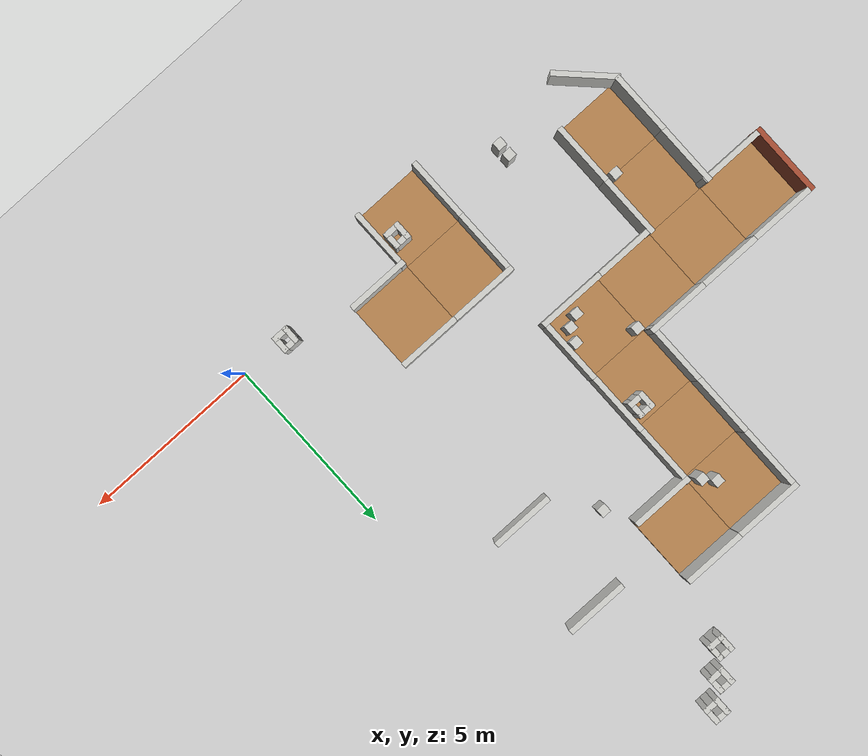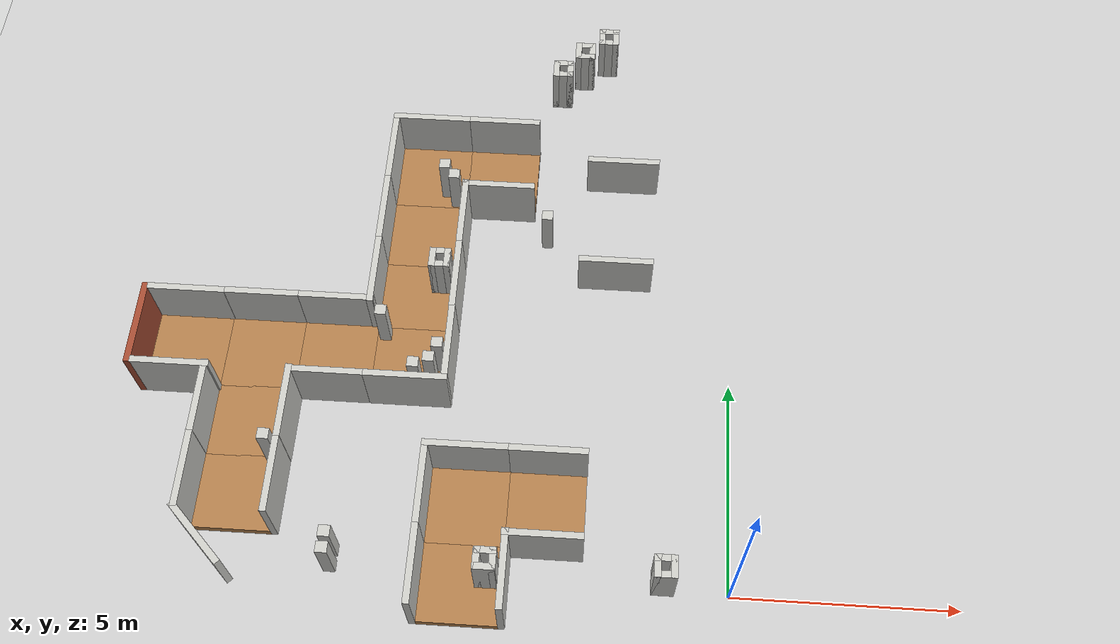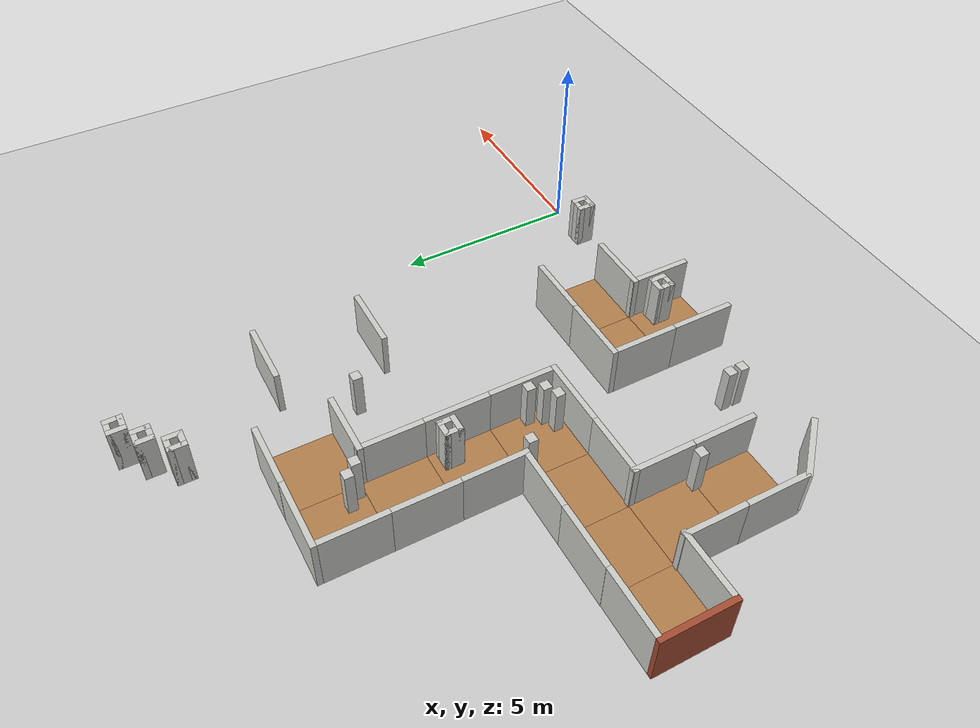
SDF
<sdf version="1.6">
 <world name="default">
  <model name="ground_plane">
   <static>1</static>
   <link name="link">
    <collision name="collision">
     <geometry><plane><normal>0 0 1</normal><size>100 100</size></plane></geometry>
     <surface><friction><ode><mu>100</mu><mu2>50</mu2></ode></friction></surface>
    </collision>
    <visual name="visual">
     <cast_shadows>0</cast_shadows>
     <geometry><plane><normal>0 0 1</normal><size>100 100</size></plane></geometry>
     <material>
      <script><uri>file://media/materials/scripts/gazebo.material</uri><name>Gazebo/Grey</name></script>
     </material>
    </visual>
   </link>
  </model>
  <model name="nerve_straight_9">
   <pose>-4.05488 1.62658 0 0 0 -1.5708</pose>
   <link name="Wall_0">
    <collision name="Wall_0_Collision">
     <geometry><box><size>1.76 1.75 0.2</size></box></geometry>
     <pose>0 0 0.1 0 -0 0</pose>
    </collision>
    <visual name="Wall_0_Visual">
     <pose>0 0 0.1 0 -0 0</pose>
     <geometry><box><size>1.76 1.75 0.2</size></box></geometry>
     <material>
      <script><uri>file://media/materials/scripts/gazebo.material</uri><name>Gazebo/Wood</name></script>
      <ambient>1 0.764706 0.305882 1</ambient>
     </material>
    </visual>
    <pose>0.005 -0.002 0 0 -0 3.14159</pose>
   </link>
   <link name="Wall_2">
    <collision name="Wall_2_Collision">
     <geometry><box><size>1.75 0.15 1.5</size></box></geometry>
     <pose>0 0 0.75 0 -0 0</pose>
    </collision>
    <visual name="Wall_2_Visual">
     <pose>0 0 0.75 0 -0 0</pose>
     <geometry><box><size>1.75 0.15 1.5</size></box></geometry>
     <material>
      <script><uri>file://media/materials/scripts/gazebo.material</uri><name>Gazebo/CeilingTiled</name></script>
      <ambient>1 0.764706 0.305882 1</ambient>
     </material>
    </visual>
    <pose>-0.955 0.002 0 0 0 -1.5708</pose>
   </link>
   <link name="Wall_4">
    <collision name="Wall_4_Collision">
     <geometry><box><size>1.75 0.15 1.5</size></box></geometry>
     <pose>0 0 0.75 0 -0 0</pose>
    </collision>
    <visual name="Wall_4_Visual">
     <pose>0 0 0.75 0 -0 0</pose>
     <geometry><box><size>1.75 0.15 1.5</size></box></geometry>
     <material>
      <script><uri>file://media/materials/scripts/gazebo.material</uri><name>Gazebo/CeilingTiled</name></script>
      <ambient>1 0.764706 0.305882 1</ambient>
     </material>
    </visual>
    <pose>0.955 0.002 0 0 0 -1.5708</pose>
   </link>
   <static>1</static>
  </model>
  <model name="nerve_corner_9">
   <pose>-5.86899 1.703 0 0 -0 0</pose>
   <link name="Wall_0">
    <collision name="Wall_0_Collision">
     <geometry><box><size>1.76 1.75 0.2</size></box></geometry>
     <pose>0 0 0.1 0 -0 0</pose>
    </collision>
    <visual name="Wall_0_Visual">
     <pose>0 0 0.1 0 -0 0</pose>
     <geometry><box><size>1.76 1.75 0.2</size></box></geometry>
     <material>
      <script><uri>file://media/materials/scripts/gazebo.material</uri><name>Gazebo/Wood</name></script>
      <ambient>1 0.764706 0.305882 1</ambient>
     </material>
    </visual>
    <pose>0.077507 -0.077007 0 0 -0 3.14159</pose>
   </link>
   <link name="Wall_2">
    <collision name="Wall_2_Collision">
     <geometry><box><size>1.75 0.15 1.5</size></box></geometry>
     <pose>0 0 0.75 0 -0 0</pose>
    </collision>
    <visual name="Wall_2_Visual">
     <pose>0 0 0.75 0 -0 0</pose>
     <geometry><box><size>1.75 0.15 1.5</size></box></geometry>
     <material>
      <script><uri>file://media/materials/scripts/gazebo.material</uri><name>Gazebo/CeilingTiled</name></script>
      <ambient>1 0.764706 0.305882 1</ambient>
     </material>
    </visual>
    <pose>-0.882493 -0.073007 0 0 0 -1.5708</pose>
   </link>
   <link name="Wall_4">
    <collision name="Wall_4_Collision">
     <geometry><box><size>1.91042 0.15 1.5</size></box></geometry>
     <pose>0 0 0.75 0 -0 0</pose>
    </collision>
    <visual name="Wall_4_Visual">
     <pose>0 0 0.75 0 -0 0</pose>
     <geometry><box><size>1.91042 0.15 1.5</size></box></geometry>
     <material>
      <script><uri>file://media/materials/scripts/gazebo.material</uri><name>Gazebo/CeilingTiled</name></script>
      <ambient>1 0.764706 0.305882 1</ambient>
     </material>
    </visual>
    <pose>-0.002284 0.876825 0 0 -0 3.1414</pose>
   </link>
   <static>1</static>
  </model>
  <model name="nerve_straight_10">
   <pose>-5.79649 -0.117781 0 0 -0 0</pose>
   <link name="Wall_0">
    <collision name="Wall_0_Collision">
     <geometry><box><size>1.76 1.75 0.2</size></box></geometry>
     <pose>0 0 0.1 0 -0 0</pose>
    </collision>
    <visual name="Wall_0_Visual">
     <pose>0 0 0.1 0 -0 0</pose>
     <geometry><box><size>1.76 1.75 0.2</size></box></geometry>
     <material>
      <script><uri>file://media/materials/scripts/gazebo.material</uri><name>Gazebo/Wood</name></script>
      <ambient>1 0.764706 0.305882 1</ambient>
     </material>
    </visual>
    <pose>0.005 -0.002 0 0 -0 3.14159</pose>
   </link>
   <link name="Wall_2">
    <collision name="Wall_2_Collision">
     <geometry><box><size>1.75 0.15 1.5</size></box></geometry>
     <pose>0 0 0.75 0 -0 0</pose>
    </collision>
    <visual name="Wall_2_Visual">
     <pose>0 0 0.75 0 -0 0</pose>
     <geometry><box><size>1.75 0.15 1.5</size></box></geometry>
     <material>
      <script><uri>file://media/materials/scripts/gazebo.material</uri><name>Gazebo/CeilingTiled</name></script>
      <ambient>1 0.764706 0.305882 1</ambient>
     </material>
    </visual>
    <pose>-0.955 0.002 0 0 0 -1.5708</pose>
   </link>
   <link name="Wall_4">
    <collision name="Wall_4_Collision">
     <geometry><box><size>1.75 0.15 1.5</size></box></geometry>
     <pose>0 0 0.75 0 -0 0</pose>
    </collision>
    <visual name="Wall_4_Visual">
     <pose>0 0 0.75 0 -0 0</pose>
     <geometry><box><size>1.75 0.15 1.5</size></box></geometry>
     <material>
      <script><uri>file://media/materials/scripts/gazebo.material</uri><name>Gazebo/CeilingTiled</name></script>
      <ambient>1 0.764706 0.305882 1</ambient>
     </material>
    </visual>
    <pose>0.955 0.002 0 0 0 -1.5708</pose>
   </link>
   <static>1</static>
  </model>
  <model name="nerve_straight_10_clone_0_clone">
   <pose>-10.9639 1.66579 0 0 -0 0</pose>
   <link name="Wall_0">
    <collision name="Wall_0_Collision">
     <geometry><box><size>1.76 1.75 0.2</size></box></geometry>
     <pose>0 0 0.1 0 -0 0</pose>
    </collision>
    <visual name="Wall_0_Visual">
     <pose>0 0 0.1 0 -0 0</pose>
     <geometry><box><size>1.76 1.75 0.2</size></box></geometry>
     <material>
      <script><uri>file://media/materials/scripts/gazebo.material</uri><name>Gazebo/Wood</name></script>
      <ambient>1 0.764706 0.305882 1</ambient>
     </material>
    </visual>
    <pose>0.005 -0.002 0 0 -0 3.14159</pose>
   </link>
   <link name="Wall_2">
    <collision name="Wall_2_Collision">
     <geometry><box><size>1.75 0.15 1.5</size></box></geometry>
     <pose>0 0 0.75 0 -0 0</pose>
    </collision>
    <visual name="Wall_2_Visual">
     <pose>0 0 0.75 0 -0 0</pose>
     <geometry><box><size>1.75 0.15 1.5</size></box></geometry>
     <material>
      <script><uri>file://media/materials/scripts/gazebo.material</uri><name>Gazebo/CeilingTiled</name></script>
      <ambient>1 0.764706 0.305882 1</ambient>
     </material>
    </visual>
    <pose>-0.955 0.002 0 0 0 -1.5708</pose>
   </link>
   <link name="Wall_4">
    <collision name="Wall_4_Collision">
     <geometry><box><size>1.75 0.15 1.5</size></box></geometry>
     <pose>0 0 0.75 0 -0 0</pose>
    </collision>
    <visual name="Wall_4_Visual">
     <pose>0 0 0.75 0 -0 0</pose>
     <geometry><box><size>1.75 0.15 1.5</size></box></geometry>
     <material>
      <script><uri>file://media/materials/scripts/gazebo.material</uri><name>Gazebo/CeilingTiled</name></script>
      <ambient>1 0.764706 0.305882 1</ambient>
     </material>
    </visual>
    <pose>0.955 0.002 0 0 0 -1.5708</pose>
   </link>
   <static>1</static>
  </model>
  <model name="nerve_straight_10_clone_0_clone_0">
   <pose>-10.9587 3.39384 0 0 -0 0</pose>
   <link name="Wall_0">
    <collision name="Wall_0_Collision">
     <geometry><box><size>1.76 1.75 0.2</size></box></geometry>
     <pose>0 0 0.1 0 -0 0</pose>
    </collision>
    <visual name="Wall_0_Visual">
     <pose>0 0 0.1 0 -0 0</pose>
     <geometry><box><size>1.76 1.75 0.2</size></box></geometry>
     <material>
      <script><uri>file://media/materials/scripts/gazebo.material</uri><name>Gazebo/Wood</name></script>
      <ambient>1 0.764706 0.305882 1</ambient>
     </material>
    </visual>
    <pose>0.005 -0.002 0 0 -0 3.14159</pose>
   </link>
   <link name="Wall_2">
    <collision name="Wall_2_Collision">
     <geometry><box><size>1.75 0.15 1.5</size></box></geometry>
     <pose>0 0 0.75 0 -0 0</pose>
    </collision>
    <visual name="Wall_2_Visual">
     <pose>0 0 0.75 0 -0 0</pose>
     <geometry><box><size>1.75 0.15 1.5</size></box></geometry>
     <material>
      <script><uri>file://media/materials/scripts/gazebo.material</uri><name>Gazebo/CeilingTiled</name></script>
      <ambient>1 0.764706 0.305882 1</ambient>
     </material>
    </visual>
    <pose>-0.955 0.002 0 0 0 -1.5708</pose>
   </link>
   <link name="Wall_4">
    <collision name="Wall_4_Collision">
     <geometry><box><size>1.75 0.15 1.5</size></box></geometry>
     <pose>0 0 0.75 0 -0 0</pose>
    </collision>
    <visual name="Wall_4_Visual">
     <pose>0 0 0.75 0 -0 0</pose>
     <geometry><box><size>1.75 0.15 1.5</size></box></geometry>
     <material>
      <script><uri>file://media/materials/scripts/gazebo.material</uri><name>Gazebo/CeilingTiled</name></script>
      <ambient>1 0.764706 0.305882 1</ambient>
     </material>
    </visual>
    <pose>0.955 0.002 0 0 0 -1.5708</pose>
   </link>
   <static>1</static>
  </model>
  <model name="nerve_straight_9_clone">
   <pose>-9.20822 5.12464 0 0 0 -1.5708</pose>
   <link name="Wall_0">
    <collision name="Wall_0_Collision">
     <geometry><box><size>1.76 1.75 0.2</size></box></geometry>
     <pose>0 0 0.1 0 -0 0</pose>
    </collision>
    <visual name="Wall_0_Visual">
     <pose>0 0 0.1 0 -0 0</pose>
     <geometry><box><size>1.76 1.75 0.2</size></box></geometry>
     <material>
      <script><uri>file://media/materials/scripts/gazebo.material</uri><name>Gazebo/Wood</name></script>
      <ambient>1 0.764706 0.305882 1</ambient>
     </material>
    </visual>
    <pose>0.005 -0.002 0 0 -0 3.14159</pose>
   </link>
   <link name="Wall_2">
    <collision name="Wall_2_Collision">
     <geometry><box><size>1.75 0.15 1.5</size></box></geometry>
     <pose>0 0 0.75 0 -0 0</pose>
    </collision>
    <visual name="Wall_2_Visual">
     <pose>0 0 0.75 0 -0 0</pose>
     <geometry><box><size>1.75 0.15 1.5</size></box></geometry>
     <material>
      <script><uri>file://media/materials/scripts/gazebo.material</uri><name>Gazebo/CeilingTiled</name></script>
      <ambient>1 0.764706 0.305882 1</ambient>
     </material>
    </visual>
    <pose>-0.955 0.002 0 0 0 -1.5708</pose>
   </link>
   <link name="Wall_4">
    <collision name="Wall_4_Collision">
     <geometry><box><size>1.75 0.15 1.5</size></box></geometry>
     <pose>0 0 0.75 0 -0 0</pose>
    </collision>
    <visual name="Wall_4_Visual">
     <pose>0 0 0.75 0 -0 0</pose>
     <geometry><box><size>1.75 0.15 1.5</size></box></geometry>
     <material>
      <script><uri>file://media/materials/scripts/gazebo.material</uri><name>Gazebo/CeilingTiled</name></script>
      <ambient>1 0.764706 0.305882 1</ambient>
     </material>
    </visual>
    <pose>0.955 0.002 0 0 0 -1.5708</pose>
   </link>
   <static>1</static>
  </model>
  <model name="nerve_corner_8_clone_clone">
   <pose>-7.38531 5.04632 0 0 0 -3.14159</pose>
   <link name="Wall_0">
    <collision name="Wall_0_Collision">
     <geometry><box><size>1.76 1.75 0.2</size></box></geometry>
     <pose>0 0 0.1 0 -0 0</pose>
    </collision>
    <visual name="Wall_0_Visual">
     <pose>0 0 0.1 0 -0 0</pose>
     <geometry><box><size>1.76 1.75 0.2</size></box></geometry>
     <material>
      <script><uri>file://media/materials/scripts/gazebo.material</uri><name>Gazebo/Wood</name></script>
      <ambient>1 0.764706 0.305882 1</ambient>
     </material>
    </visual>
    <pose>0.077507 -0.077007 0 0 -0 3.14159</pose>
   </link>
   <link name="Wall_2">
    <collision name="Wall_2_Collision">
     <geometry><box><size>1.75 0.15 1.5</size></box></geometry>
     <pose>0 0 0.75 0 -0 0</pose>
    </collision>
    <visual name="Wall_2_Visual">
     <pose>0 0 0.75 0 -0 0</pose>
     <geometry><box><size>1.75 0.15 1.5</size></box></geometry>
     <material>
      <script><uri>file://media/materials/scripts/gazebo.material</uri><name>Gazebo/CeilingTiled</name></script>
      <ambient>1 0.764706 0.305882 1</ambient>
     </material>
    </visual>
    <pose>-0.882493 -0.073007 0 0 0 -1.5708</pose>
   </link>
   <link name="Wall_4">
    <collision name="Wall_4_Collision">
     <geometry><box><size>1.91042 0.15 1.5</size></box></geometry>
     <pose>0 0 0.75 0 -0 0</pose>
    </collision>
    <visual name="Wall_4_Visual">
     <pose>0 0 0.75 0 -0 0</pose>
     <geometry><box><size>1.91042 0.15 1.5</size></box></geometry>
     <material>
      <script><uri>file://media/materials/scripts/gazebo.material</uri><name>Gazebo/CeilingTiled</name></script>
      <ambient>1 0.764706 0.305882 1</ambient>
     </material>
    </visual>
    <pose>-0.002284 0.876825 0 0 -0 3.1414</pose>
   </link>
   <static>1</static>
  </model>
  <model name="nerve_straight_10_clone_clone">
   <pose>-7.46548 6.86517 0 0 -0 0</pose>
   <link name="Wall_0">
    <collision name="Wall_0_Collision">
     <geometry><box><size>1.76 1.75 0.2</size></box></geometry>
     <pose>0 0 0.1 0 -0 0</pose>
    </collision>
    <visual name="Wall_0_Visual">
     <pose>0 0 0.1 0 -0 0</pose>
     <geometry><box><size>1.76 1.75 0.2</size></box></geometry>
     <material>
      <script><uri>file://media/materials/scripts/gazebo.material</uri><name>Gazebo/Wood</name></script>
      <ambient>1 0.764706 0.305882 1</ambient>
     </material>
    </visual>
    <pose>0.005 -0.002 0 0 -0 3.14159</pose>
   </link>
   <link name="Wall_2">
    <collision name="Wall_2_Collision">
     <geometry><box><size>1.75 0.15 1.5</size></box></geometry>
     <pose>0 0 0.75 0 -0 0</pose>
    </collision>
    <visual name="Wall_2_Visual">
     <pose>0 0 0.75 0 -0 0</pose>
     <geometry><box><size>1.75 0.15 1.5</size></box></geometry>
     <material>
      <script><uri>file://media/materials/scripts/gazebo.material</uri><name>Gazebo/CeilingTiled</name></script>
      <ambient>1 0.764706 0.305882 1</ambient>
     </material>
    </visual>
    <pose>-0.955 0.002 0 0 0 -1.5708</pose>
   </link>
   <link name="Wall_4">
    <collision name="Wall_4_Collision">
     <geometry><box><size>1.75 0.15 1.5</size></box></geometry>
     <pose>0 0 0.75 0 -0 0</pose>
    </collision>
    <visual name="Wall_4_Visual">
     <pose>0 0 0.75 0 -0 0</pose>
     <geometry><box><size>1.75 0.15 1.5</size></box></geometry>
     <material>
      <script><uri>file://media/materials/scripts/gazebo.material</uri><name>Gazebo/CeilingTiled</name></script>
      <ambient>1 0.764706 0.305882 1</ambient>
     </material>
    </visual>
    <pose>0.955 0.002 0 0 0 -1.5708</pose>
   </link>
   <static>1</static>
  </model>
  <model name="nerve_corner_9_clone_0">
   <pose>-7.54165 10.4237 0 0 -0 0</pose>
   <link name="Wall_0">
    <collision name="Wall_0_Collision">
     <geometry><box><size>1.76 1.75 0.2</size></box></geometry>
     <pose>0 0 0.1 0 -0 0</pose>
    </collision>
    <visual name="Wall_0_Visual">
     <pose>0 0 0.1 0 -0 0</pose>
     <geometry><box><size>1.76 1.75 0.2</size></box></geometry>
     <material>
      <script><uri>file://media/materials/scripts/gazebo.material</uri><name>Gazebo/Wood</name></script>
      <ambient>1 0.764706 0.305882 1</ambient>
     </material>
    </visual>
    <pose>0.077507 -0.077007 0 0 -0 3.14159</pose>
   </link>
   <link name="Wall_2">
    <collision name="Wall_2_Collision">
     <geometry><box><size>1.75 0.15 1.5</size></box></geometry>
     <pose>0 0 0.75 0 -0 0</pose>
    </collision>
    <visual name="Wall_2_Visual">
     <pose>0 0 0.75 0 -0 0</pose>
     <geometry><box><size>1.75 0.15 1.5</size></box></geometry>
     <material>
      <script><uri>file://media/materials/scripts/gazebo.material</uri><name>Gazebo/CeilingTiled</name></script>
      <ambient>1 0.764706 0.305882 1</ambient>
     </material>
    </visual>
    <pose>-0.882493 -0.073007 0 0 0 -1.5708</pose>
   </link>
   <link name="Wall_4">
    <collision name="Wall_4_Collision">
     <geometry><box><size>1.91042 0.15 1.5</size></box></geometry>
     <pose>0 0 0.75 0 -0 0</pose>
    </collision>
    <visual name="Wall_4_Visual">
     <pose>0 0 0.75 0 -0 0</pose>
     <geometry><box><size>1.91042 0.15 1.5</size></box></geometry>
     <material>
      <script><uri>file://media/materials/scripts/gazebo.material</uri><name>Gazebo/CeilingTiled</name></script>
      <ambient>1 0.764706 0.305882 1</ambient>
     </material>
    </visual>
    <pose>-0.002284 0.876825 0 0 -0 3.1414</pose>
   </link>
   <static>1</static>
  </model>
  <model name="nerve_straight_9_clone_0">
   <pose>-5.71933 10.3491 0 0 0 -1.5708</pose>
   <link name="Wall_0">
    <collision name="Wall_0_Collision">
     <geometry><box><size>1.76 1.75 0.2</size></box></geometry>
     <pose>0 0 0.1 0 -0 0</pose>
    </collision>
    <visual name="Wall_0_Visual">
     <pose>0 0 0.1 0 -0 0</pose>
     <geometry><box><size>1.76 1.75 0.2</size></box></geometry>
     <material>
      <script><uri>file://media/materials/scripts/gazebo.material</uri><name>Gazebo/Wood</name></script>
      <ambient>1 0.764706 0.305882 1</ambient>
     </material>
    </visual>
    <pose>0.005 -0.002 0 0 -0 3.14159</pose>
   </link>
   <link name="Wall_2">
    <collision name="Wall_2_Collision">
     <geometry><box><size>1.75 0.15 1.5</size></box></geometry>
     <pose>0 0 0.75 0 -0 0</pose>
    </collision>
    <visual name="Wall_2_Visual">
     <pose>0 0 0.75 0 -0 0</pose>
     <geometry><box><size>1.75 0.15 1.5</size></box></geometry>
     <material>
      <script><uri>file://media/materials/scripts/gazebo.material</uri><name>Gazebo/CeilingTiled</name></script>
      <ambient>1 0.764706 0.305882 1</ambient>
     </material>
    </visual>
    <pose>-0.955 0.002 0 0 0 -1.5708</pose>
   </link>
   <link name="Wall_4">
    <collision name="Wall_4_Collision">
     <geometry><box><size>1.75 0.15 1.5</size></box></geometry>
     <pose>0 0 0.75 0 -0 0</pose>
    </collision>
    <visual name="Wall_4_Visual">
     <pose>0 0 0.75 0 -0 0</pose>
     <geometry><box><size>1.75 0.15 1.5</size></box></geometry>
     <material>
      <script><uri>file://media/materials/scripts/gazebo.material</uri><name>Gazebo/CeilingTiled</name></script>
      <ambient>1 0.764706 0.305882 1</ambient>
     </material>
    </visual>
    <pose>0.955 0.002 0 0 0 -1.5708</pose>
   </link>
   <static>1</static>
  </model>
  <model name="nerve_straight_10_clone_clone_clone">
   <pose>-7.47032 8.60859 0 0 -0 0</pose>
   <link name="Wall_0">
    <collision name="Wall_0_Collision">
     <geometry><box><size>1.76 1.75 0.2</size></box></geometry>
     <pose>0 0 0.1 0 -0 0</pose>
    </collision>
    <visual name="Wall_0_Visual">
     <pose>0 0 0.1 0 -0 0</pose>
     <geometry><box><size>1.76 1.75 0.2</size></box></geometry>
     <material>
      <script><uri>file://media/materials/scripts/gazebo.material</uri><name>Gazebo/Wood</name></script>
      <ambient>1 0.764706 0.305882 1</ambient>
     </material>
    </visual>
    <pose>0.005 -0.002 0 0 -0 3.14159</pose>
   </link>
   <link name="Wall_2">
    <collision name="Wall_2_Collision">
     <geometry><box><size>1.75 0.15 1.5</size></box></geometry>
     <pose>0 0 0.75 0 -0 0</pose>
    </collision>
    <visual name="Wall_2_Visual">
     <pose>0 0 0.75 0 -0 0</pose>
     <geometry><box><size>1.75 0.15 1.5</size></box></geometry>
     <material>
      <script><uri>file://media/materials/scripts/gazebo.material</uri><name>Gazebo/CeilingTiled</name></script>
      <ambient>1 0.764706 0.305882 1</ambient>
     </material>
    </visual>
    <pose>-0.955 0.002 0 0 0 -1.5708</pose>
   </link>
   <link name="Wall_4">
    <collision name="Wall_4_Collision">
     <geometry><box><size>1.75 0.15 1.5</size></box></geometry>
     <pose>0 0 0.75 0 -0 0</pose>
    </collision>
    <visual name="Wall_4_Visual">
     <pose>0 0 0.75 0 -0 0</pose>
     <geometry><box><size>1.75 0.15 1.5</size></box></geometry>
     <material>
      <script><uri>file://media/materials/scripts/gazebo.material</uri><name>Gazebo/CeilingTiled</name></script>
      <ambient>1 0.764706 0.305882 1</ambient>
     </material>
    </visual>
    <pose>0.955 0.002 0 0 0 -1.5708</pose>
   </link>
   <static>1</static>
  </model>
  <model name="nerve_end_1">
   <pose>-12.7692 5.12243 0 0 -0 1.5708</pose>
   <link name="Wall_0">
    <collision name="Wall_0_Collision">
     <geometry><box><size>1.76 1.75 0.2</size></box></geometry>
     <pose>0 0 0.1 0 -0 0</pose>
    </collision>
    <visual name="Wall_0_Visual">
     <pose>0 0 0.1 0 -0 0</pose>
     <geometry><box><size>1.76 1.75 0.2</size></box></geometry>
     <material>
      <script><uri>file://media/materials/scripts/gazebo.material</uri><name>Gazebo/Wood</name></script>
      <ambient>1 0.764706 0.305882 1</ambient>
     </material>
    </visual>
    <pose>-0.009 -0.064 0 0 -0 0</pose>
   </link>
   <link name="Wall_2">
    <collision name="Wall_2_Collision">
     <geometry><box><size>1.8 0.15 1.5</size></box></geometry>
     <pose>0 0 0.75 0 -0 0</pose>
    </collision>
    <visual name="Wall_2_Visual">
     <pose>0 0 0.75 0 -0 0</pose>
     <geometry><box><size>1.8 0.15 1.5</size></box></geometry>
     <material>
      <script><uri>file://media/materials/scripts/gazebo.material</uri><name>Gazebo/CeilingTiled</name></script>
      <ambient>1 0.764706 0.305882 1</ambient>
     </material>
    </visual>
    <pose>-0.95 -0.065 0 0 0 -1.5708</pose>
   </link>
   <link name="Wall_4">
    <collision name="Wall_4_Collision">
     <geometry><box><size>1.8 0.15 1.5</size></box></geometry>
     <pose>0 0 0.75 0 -0 0</pose>
    </collision>
    <visual name="Wall_4_Visual">
     <pose>0 0 0.75 0 -0 0</pose>
     <geometry><box><size>1.8 0.15 1.5</size></box></geometry>
     <material>
      <script><uri>file://media/materials/scripts/gazebo.material</uri><name>Gazebo/CeilingTiled</name></script>
      <ambient>1 0.764706 0.305882 1</ambient>
     </material>
    </visual>
    <pose>0.95 -0.065 0 0 0 -1.5708</pose>
   </link>
   <link name="Wall_6">
    <collision name="Wall_6_Collision">
     <geometry><box><size>2.05 0.15 1.5</size></box></geometry>
     <pose>0 0 0.75 0 -0 0</pose>
    </collision>
    <visual name="Wall_6_Visual">
     <pose>0 0 0.75 0 -0 0</pose>
     <geometry><box><size>2.05 0.15 1.5</size></box></geometry>
     <material>
      <script><uri>file://media/materials/scripts/gazebo.material</uri><name>Gazebo/Bricks</name></script>
      <ambient>0.996078 0.47451 0.0196078 1</ambient>
     </material>
    </visual>
    <pose>0 0.89 0 0 -0 0</pose>
   </link>
   <static>1</static>
  </model>
  <model name="nerve_onewall_1_clone">
   <pose>-10.9579 5.1956 0 0 0 -1.57079</pose>
   <link name="Wall_0">
    <collision name="Wall_0_Collision">
     <geometry><box><size>1.76 1.75 0.2</size></box></geometry>
     <pose>0 0 0.1 0 -0 0</pose>
    </collision>
    <visual name="Wall_0_Visual">
     <pose>0 0 0.1 0 -0 0</pose>
     <geometry><box><size>1.76 1.75 0.2</size></box></geometry>
     <material>
      <script><uri>file://media/materials/scripts/gazebo.material</uri><name>Gazebo/Wood</name></script>
      <ambient>1 0.764706 0.305882 1</ambient>
     </material>
    </visual>
    <pose>0.0775 -0.002 0 0 -0 3.14159</pose>
   </link>
   <link name="Wall_2">
    <collision name="Wall_2_Collision">
     <geometry><box><size>1.75 0.15 1.5</size></box></geometry>
     <pose>0 0 0.75 0 -0 0</pose>
    </collision>
    <visual name="Wall_2_Visual">
     <pose>0 0 0.75 0 -0 0</pose>
     <geometry><box><size>1.75 0.15 1.5</size></box></geometry>
     <material>
      <script><uri>file://media/materials/scripts/gazebo.material</uri><name>Gazebo/CeilingTiled</name></script>
      <ambient>1 0.764706 0.305882 1</ambient>
     </material>
    </visual>
    <pose>-0.8825 0.002 0 0 0 -1.5708</pose>
   </link>
   <static>1</static>
  </model>
  <model name="nerve_obs_squarepillar_large_clone_0">
   <pose>-1.44891 0.139332 0.2 0 -0 0</pose>
   <link name="Wall_31">
    <collision name="Wall_31_Collision">
     <geometry><box><size>0.5 0.15 1.3</size></box></geometry>
     <pose>0 0 0.65 0 -0 0</pose>
    </collision>
    <visual name="Wall_31_Visual">
     <pose>0 0 0.65 0 -0 0</pose>
     <geometry><box><size>0.5 0.15 1.3</size></box></geometry>
     <material>
      <script><uri>file://media/materials/scripts/gazebo.material</uri><name>Gazebo/CeilingTiled</name></script>
      <ambient>1 0.764706 0.305882 1</ambient>
     </material>
    </visual>
    <pose>-0.175 0 0 0 0 -1.5708</pose>
   </link>
   <link name="Wall_32">
    <collision name="Wall_32_Collision">
     <geometry><box><size>0.5 0.15 1.3</size></box></geometry>
     <pose>0 0 0.65 0 -0 0</pose>
    </collision>
    <visual name="Wall_32_Visual">
     <pose>0 0 0.65 0 -0 0</pose>
     <geometry><box><size>0.5 0.15 1.3</size></box></geometry>
     <material>
      <script><uri>file://media/materials/scripts/gazebo.material</uri><name>Gazebo/CeilingTiled</name></script>
      <ambient>1 0.764706 0.305882 1</ambient>
     </material>
    </visual>
    <pose>0 -0.175 0 0 -0 0</pose>
   </link>
   <link name="Wall_33">
    <collision name="Wall_33_Collision">
     <geometry><box><size>0.5 0.15 1.3</size></box></geometry>
     <pose>0 0 0.65 0 -0 0</pose>
    </collision>
    <visual name="Wall_33_Visual">
     <pose>0 0 0.65 0 -0 0</pose>
     <geometry><box><size>0.5 0.15 1.3</size></box></geometry>
     <material>
      <script><uri>file://media/materials/scripts/gazebo.material</uri><name>Gazebo/CeilingTiled</name></script>
      <ambient>1 0.764706 0.305882 1</ambient>
     </material>
    </visual>
    <pose>0.175 0 0 0 -0 1.5708</pose>
   </link>
   <link name="Wall_34">
    <collision name="Wall_34_Collision">
     <geometry><box><size>0.5 0.15 1.3</size></box></geometry>
     <pose>0 0 0.65 0 -0 0</pose>
    </collision>
    <visual name="Wall_34_Visual">
     <pose>0 0 0.65 0 -0 0</pose>
     <geometry><box><size>0.5 0.15 1.3</size></box></geometry>
     <material>
      <script><uri>file://media/materials/scripts/gazebo.material</uri><name>Gazebo/CeilingTiled</name></script>
      <ambient>1 0.764706 0.305882 1</ambient>
     </material>
    </visual>
    <pose>0 0.175 0 0 -0 3.14159</pose>
   </link>
   <static>1</static>
  </model>
  <model name="nerve_obs_wall_full_clone_0">
   <pose>-11.3651 0.243622 0.2 0 0 -0.785398</pose>
   <link name="Wall_21">
    <collision name="Wall_21_Collision">
     <geometry><box><size>1.75 0.15 1.3</size></box></geometry>
     <pose>0 0 0.65 0 -0 0</pose>
    </collision>
    <visual name="Wall_21_Visual">
     <pose>0 0 0.65 0 -0 0</pose>
     <geometry><box><size>1.75 0.15 1.3</size></box></geometry>
     <material>
      <script><uri>file://media/materials/scripts/gazebo.material</uri><name>Gazebo/CeilingTiled</name></script>
      <ambient>1 0.764706 0.305882 1</ambient>
     </material>
    </visual>
   </link>
   <static>1</static>
  </model>
  <model name="nerve_obs_squarepillar_large_clone_0_clone_5">
   <pose>-5.23143 0.071334 0.2 0 -0 0</pose>
   <link name="Wall_31">
    <collision name="Wall_31_Collision">
     <geometry><box><size>0.5 0.15 1.3</size></box></geometry>
     <pose>0 0 0.65 0 -0 0</pose>
    </collision>
    <visual name="Wall_31_Visual">
     <pose>0 0 0.65 0 -0 0</pose>
     <geometry><box><size>0.5 0.15 1.3</size></box></geometry>
     <material>
      <script><uri>file://media/materials/scripts/gazebo.material</uri><name>Gazebo/CeilingTiled</name></script>
      <ambient>1 0.764706 0.305882 1</ambient>
     </material>
    </visual>
    <pose>-0.175 0 0 0 0 -1.5708</pose>
   </link>
   <link name="Wall_32">
    <collision name="Wall_32_Collision">
     <geometry><box><size>0.5 0.15 1.3</size></box></geometry>
     <pose>0 0 0.65 0 -0 0</pose>
    </collision>
    <visual name="Wall_32_Visual">
     <pose>0 0 0.65 0 -0 0</pose>
     <geometry><box><size>0.5 0.15 1.3</size></box></geometry>
     <material>
      <script><uri>file://media/materials/scripts/gazebo.material</uri><name>Gazebo/CeilingTiled</name></script>
      <ambient>1 0.764706 0.305882 1</ambient>
     </material>
    </visual>
    <pose>0 -0.175 0 0 -0 0</pose>
   </link>
   <link name="Wall_33">
    <collision name="Wall_33_Collision">
     <geometry><box><size>0.5 0.15 1.3</size></box></geometry>
     <pose>0 0 0.65 0 -0 0</pose>
    </collision>
    <visual name="Wall_33_Visual">
     <pose>0 0 0.65 0 -0 0</pose>
     <geometry><box><size>0.5 0.15 1.3</size></box></geometry>
     <material>
      <script><uri>file://media/materials/scripts/gazebo.material</uri><name>Gazebo/CeilingTiled</name></script>
      <ambient>1 0.764706 0.305882 1</ambient>
     </material>
    </visual>
    <pose>0.175 0 0 0 -0 1.5708</pose>
   </link>
   <link name="Wall_34">
    <collision name="Wall_34_Collision">
     <geometry><box><size>0.5 0.15 1.3</size></box></geometry>
     <pose>0 0 0.65 0 -0 0</pose>
    </collision>
    <visual name="Wall_34_Visual">
     <pose>0 0 0.65 0 -0 0</pose>
     <geometry><box><size>0.5 0.15 1.3</size></box></geometry>
     <material>
      <script><uri>file://media/materials/scripts/gazebo.material</uri><name>Gazebo/CeilingTiled</name></script>
      <ambient>1 0.764706 0.305882 1</ambient>
     </material>
    </visual>
    <pose>0 0.175 0 0 -0 3.14159</pose>
   </link>
   <static>1</static>
  </model>
  <model name="nerve_obs_squarepillar_small_clone_0_clone_1_clone_4_clone_1">
   <pose>-8.64193 0.447951 0.2 0 -0 0</pose>
   <link name="Wall_40">
    <collision name="Wall_40_Collision">
     <geometry><box><size>0.26 0.25 1.3</size></box></geometry>
     <pose>0 0 0.65 0 -0 0</pose>
    </collision>
    <visual name="Wall_40_Visual">
     <pose>0 0 0.65 0 -0 0</pose>
     <geometry><box><size>0.26 0.25 1.3</size></box></geometry>
     <material>
      <script><uri>file://media/materials/scripts/gazebo.material</uri><name>Gazebo/CeilingTiled</name></script>
      <ambient>1 0.764706 0.305882 1</ambient>
     </material>
    </visual>
   </link>
   <static>1</static>
  </model>
  <model name="nerve_obs_squarepillar_small_clone_0_clone_1_clone_4_clone_2">
   <pose>-8.64237 0.095538 0.2 0 -0 0</pose>
   <link name="Wall_40">
    <collision name="Wall_40_Collision">
     <geometry><box><size>0.26 0.25 1.3</size></box></geometry>
     <pose>0 0 0.65 0 -0 0</pose>
    </collision>
    <visual name="Wall_40_Visual">
     <pose>0 0 0.65 0 -0 0</pose>
     <geometry><box><size>0.26 0.25 1.3</size></box></geometry>
     <material>
      <script><uri>file://media/materials/scripts/gazebo.material</uri><name>Gazebo/CeilingTiled</name></script>
      <ambient>1 0.764706 0.305882 1</ambient>
     </material>
    </visual>
   </link>
   <static>1</static>
  </model>
  <model name="nerve_obs_squarepillar_small_clone_0_clone_1_clone_4_clone_3">
   <pose>-6.90957 4.66203 0.2 0 -0 0</pose>
   <link name="Wall_40">
    <collision name="Wall_40_Collision">
     <geometry><box><size>0.26 0.25 1.3</size></box></geometry>
     <pose>0 0 0.65 0 -0 0</pose>
    </collision>
    <visual name="Wall_40_Visual">
     <pose>0 0 0.65 0 -0 0</pose>
     <geometry><box><size>0.26 0.25 1.3</size></box></geometry>
     <material>
      <script><uri>file://media/materials/scripts/gazebo.material</uri><name>Gazebo/CeilingTiled</name></script>
      <ambient>1 0.764706 0.305882 1</ambient>
     </material>
    </visual>
   </link>
   <static>1</static>
  </model>
  <model name="nerve_obs_squarepillar_small_clone_0_clone_1_clone_4_clone_4">
   <pose>-8.13114 5.78034 0.2 0 -0 0</pose>
   <link name="Wall_40">
    <collision name="Wall_40_Collision">
     <geometry><box><size>0.26 0.25 1.3</size></box></geometry>
     <pose>0 0 0.65 0 -0 0</pose>
    </collision>
    <visual name="Wall_40_Visual">
     <pose>0 0 0.65 0 -0 0</pose>
     <geometry><box><size>0.26 0.25 1.3</size></box></geometry>
     <material>
      <script><uri>file://media/materials/scripts/gazebo.material</uri><name>Gazebo/CeilingTiled</name></script>
      <ambient>1 0.764706 0.305882 1</ambient>
     </material>
    </visual>
   </link>
   <static>1</static>
  </model>
  <model name="nerve_obs_squarepillar_small_clone_0_clone_1_clone_4_clone_5">
   <pose>-6.75294 5.02848 0.2 0 -0 0</pose>
   <link name="Wall_40">
    <collision name="Wall_40_Collision">
     <geometry><box><size>0.26 0.25 1.3</size></box></geometry>
     <pose>0 0 0.65 0 -0 0</pose>
    </collision>
    <visual name="Wall_40_Visual">
     <pose>0 0 0.65 0 -0 0</pose>
     <geometry><box><size>0.26 0.25 1.3</size></box></geometry>
     <material>
      <script><uri>file://media/materials/scripts/gazebo.material</uri><name>Gazebo/CeilingTiled</name></script>
      <ambient>1 0.764706 0.305882 1</ambient>
     </material>
    </visual>
   </link>
   <static>1</static>
  </model>
  <model name="nerve_obs_squarepillar_small_clone_0_clone_1_clone_4_clone_6">
   <pose>-7.2429 4.50165 0.2 0 -0 0</pose>
   <link name="Wall_40">
    <collision name="Wall_40_Collision">
     <geometry><box><size>0.26 0.25 1.3</size></box></geometry>
     <pose>0 0 0.65 0 -0 0</pose>
    </collision>
    <visual name="Wall_40_Visual">
     <pose>0 0 0.65 0 -0 0</pose>
     <geometry><box><size>0.26 0.25 1.3</size></box></geometry>
     <material>
      <script><uri>file://media/materials/scripts/gazebo.material</uri><name>Gazebo/CeilingTiled</name></script>
      <ambient>1 0.764706 0.305882 1</ambient>
     </material>
    </visual>
   </link>
   <static>1</static>
  </model>
  <model name="nerve_obs_squarepillar_large_clone_3_clone">
   <pose>-6.92497 7.26089 0.2 0 -0 0</pose>
   <link name="Wall_31">
    <collision name="Wall_31_Collision">
     <geometry><box><size>0.5 0.15 1.3</size></box></geometry>
     <pose>0 0 0.65 0 -0 0</pose>
    </collision>
    <visual name="Wall_31_Visual">
     <pose>0 0 0.65 0 -0 0</pose>
     <geometry><box><size>0.5 0.15 1.3</size></box></geometry>
     <material>
      <script><uri>file://media/materials/scripts/gazebo.material</uri><name>Gazebo/CeilingTiled</name></script>
      <ambient>1 0.764706 0.305882 1</ambient>
     </material>
    </visual>
    <pose>-0.175 0 0 0 0 -1.5708</pose>
   </link>
   <link name="Wall_32">
    <collision name="Wall_32_Collision">
     <geometry><box><size>0.5 0.15 1.3</size></box></geometry>
     <pose>0 0 0.65 0 -0 0</pose>
    </collision>
    <visual name="Wall_32_Visual">
     <pose>0 0 0.65 0 -0 0</pose>
     <geometry><box><size>0.5 0.15 1.3</size></box></geometry>
     <material>
      <script><uri>file://media/materials/scripts/gazebo.material</uri><name>Gazebo/CeilingTiled</name></script>
      <ambient>1 0.764706 0.305882 1</ambient>
     </material>
    </visual>
    <pose>0 -0.175 0 0 -0 0</pose>
   </link>
   <link name="Wall_33">
    <collision name="Wall_33_Collision">
     <geometry><box><size>0.5 0.15 1.3</size></box></geometry>
     <pose>0 0 0.65 0 -0 0</pose>
    </collision>
    <visual name="Wall_33_Visual">
     <pose>0 0 0.65 0 -0 0</pose>
     <geometry><box><size>0.5 0.15 1.3</size></box></geometry>
     <material>
      <script><uri>file://media/materials/scripts/gazebo.material</uri><name>Gazebo/CeilingTiled</name></script>
      <ambient>1 0.764706 0.305882 1</ambient>
     </material>
    </visual>
    <pose>0.175 0 0 0 -0 1.5708</pose>
   </link>
   <link name="Wall_34">
    <collision name="Wall_34_Collision">
     <geometry><box><size>0.5 0.15 1.3</size></box></geometry>
     <pose>0 0 0.65 0 -0 0</pose>
    </collision>
    <visual name="Wall_34_Visual">
     <pose>0 0 0.65 0 -0 0</pose>
     <geometry><box><size>0.5 0.15 1.3</size></box></geometry>
     <material>
      <script><uri>file://media/materials/scripts/gazebo.material</uri><name>Gazebo/CeilingTiled</name></script>
      <ambient>1 0.764706 0.305882 1</ambient>
     </material>
    </visual>
    <pose>0 0.175 0 0 -0 3.14159</pose>
   </link>
   <static>1</static>
  </model>
  <model name="nerve_obs_wall_full_clone_1">
   <pose>-2.71165 10.2795 0.2 0 -0 0</pose>
   <link name="Wall_21">
    <collision name="Wall_21_Collision">
     <geometry><box><size>1.75 0.15 1.3</size></box></geometry>
     <pose>0 0 0.65 0 -0 0</pose>
    </collision>
    <visual name="Wall_21_Visual">
     <pose>0 0 0.65 0 -0 0</pose>
     <geometry><box><size>1.75 0.15 1.3</size></box></geometry>
     <material>
      <script><uri>file://media/materials/scripts/gazebo.material</uri><name>Gazebo/CeilingTiled</name></script>
      <ambient>1 0.764706 0.305882 1</ambient>
     </material>
    </visual>
   </link>
   <static>1</static>
  </model>
  <model name="nerve_obs_wall_full_clone_5">
   <pose>-2.78939 7.43666 0.2 0 -0 0</pose>
   <link name="Wall_21">
    <collision name="Wall_21_Collision">
     <geometry><box><size>1.75 0.15 1.3</size></box></geometry>
     <pose>0 0 0.65 0 -0 0</pose>
    </collision>
    <visual name="Wall_21_Visual">
     <pose>0 0 0.65 0 -0 0</pose>
     <geometry><box><size>1.75 0.15 1.3</size></box></geometry>
     <material>
      <script><uri>file://media/materials/scripts/gazebo.material</uri><name>Gazebo/CeilingTiled</name></script>
      <ambient>1 0.764706 0.305882 1</ambient>
     </material>
    </visual>
   </link>
   <static>1</static>
  </model>
  <model name="nerve_obs_squarepillar_large_clone_3_clone_clone">
   <pose>-3.82343 13.6604 0.2 0 -0 0</pose>
   <link name="Wall_31">
    <collision name="Wall_31_Collision">
     <geometry><box><size>0.5 0.15 1.3</size></box></geometry>
     <pose>0 0 0.65 0 -0 0</pose>
    </collision>
    <visual name="Wall_31_Visual">
     <pose>0 0 0.65 0 -0 0</pose>
     <geometry><box><size>0.5 0.15 1.3</size></box></geometry>
     <material>
      <script><uri>file://media/materials/scripts/gazebo.material</uri><name>Gazebo/CeilingTiled</name></script>
      <ambient>1 0.764706 0.305882 1</ambient>
     </material>
    </visual>
    <pose>-0.175 0 0 0 0 -1.5708</pose>
   </link>
   <link name="Wall_32">
    <collision name="Wall_32_Collision">
     <geometry><box><size>0.5 0.15 1.3</size></box></geometry>
     <pose>0 0 0.65 0 -0 0</pose>
    </collision>
    <visual name="Wall_32_Visual">
     <pose>0 0 0.65 0 -0 0</pose>
     <geometry><box><size>0.5 0.15 1.3</size></box></geometry>
     <material>
      <script><uri>file://media/materials/scripts/gazebo.material</uri><name>Gazebo/CeilingTiled</name></script>
      <ambient>1 0.764706 0.305882 1</ambient>
     </material>
    </visual>
    <pose>0 -0.175 0 0 -0 0</pose>
   </link>
   <link name="Wall_33">
    <collision name="Wall_33_Collision">
     <geometry><box><size>0.5 0.15 1.3</size></box></geometry>
     <pose>0 0 0.65 0 -0 0</pose>
    </collision>
    <visual name="Wall_33_Visual">
     <pose>0 0 0.65 0 -0 0</pose>
     <geometry><box><size>0.5 0.15 1.3</size></box></geometry>
     <material>
      <script><uri>file://media/materials/scripts/gazebo.material</uri><name>Gazebo/CeilingTiled</name></script>
      <ambient>1 0.764706 0.305882 1</ambient>
     </material>
    </visual>
    <pose>0.175 0 0 0 -0 1.5708</pose>
   </link>
   <link name="Wall_34">
    <collision name="Wall_34_Collision">
     <geometry><box><size>0.5 0.15 1.3</size></box></geometry>
     <pose>0 0 0.65 0 -0 0</pose>
    </collision>
    <visual name="Wall_34_Visual">
     <pose>0 0 0.65 0 -0 0</pose>
     <geometry><box><size>0.5 0.15 1.3</size></box></geometry>
     <material>
      <script><uri>file://media/materials/scripts/gazebo.material</uri><name>Gazebo/CeilingTiled</name></script>
      <ambient>1 0.764706 0.305882 1</ambient>
     </material>
    </visual>
    <pose>0 0.175 0 0 -0 3.14159</pose>
   </link>
   <static>1</static>
  </model>
  <model name="nerve_obs_squarepillar_large_clone_3_clone_clone_0">
   <pose>-4.35633 13.0485 0.2 0 -0 0</pose>
   <link name="Wall_31">
    <collision name="Wall_31_Collision">
     <geometry><box><size>0.5 0.15 1.3</size></box></geometry>
     <pose>0 0 0.65 0 -0 0</pose>
    </collision>
    <visual name="Wall_31_Visual">
     <pose>0 0 0.65 0 -0 0</pose>
     <geometry><box><size>0.5 0.15 1.3</size></box></geometry>
     <material>
      <script><uri>file://media/materials/scripts/gazebo.material</uri><name>Gazebo/CeilingTiled</name></script>
      <ambient>1 0.764706 0.305882 1</ambient>
     </material>
    </visual>
    <pose>-0.175 0 0 0 0 -1.5708</pose>
   </link>
   <link name="Wall_32">
    <collision name="Wall_32_Collision">
     <geometry><box><size>0.5 0.15 1.3</size></box></geometry>
     <pose>0 0 0.65 0 -0 0</pose>
    </collision>
    <visual name="Wall_32_Visual">
     <pose>0 0 0.65 0 -0 0</pose>
     <geometry><box><size>0.5 0.15 1.3</size></box></geometry>
     <material>
      <script><uri>file://media/materials/scripts/gazebo.material</uri><name>Gazebo/CeilingTiled</name></script>
      <ambient>1 0.764706 0.305882 1</ambient>
     </material>
    </visual>
    <pose>0 -0.175 0 0 -0 0</pose>
   </link>
   <link name="Wall_33">
    <collision name="Wall_33_Collision">
     <geometry><box><size>0.5 0.15 1.3</size></box></geometry>
     <pose>0 0 0.65 0 -0 0</pose>
    </collision>
    <visual name="Wall_33_Visual">
     <pose>0 0 0.65 0 -0 0</pose>
     <geometry><box><size>0.5 0.15 1.3</size></box></geometry>
     <material>
      <script><uri>file://media/materials/scripts/gazebo.material</uri><name>Gazebo/CeilingTiled</name></script>
      <ambient>1 0.764706 0.305882 1</ambient>
     </material>
    </visual>
    <pose>0.175 0 0 0 -0 1.5708</pose>
   </link>
   <link name="Wall_34">
    <collision name="Wall_34_Collision">
     <geometry><box><size>0.5 0.15 1.3</size></box></geometry>
     <pose>0 0 0.65 0 -0 0</pose>
    </collision>
    <visual name="Wall_34_Visual">
     <pose>0 0 0.65 0 -0 0</pose>
     <geometry><box><size>0.5 0.15 1.3</size></box></geometry>
     <material>
      <script><uri>file://media/materials/scripts/gazebo.material</uri><name>Gazebo/CeilingTiled</name></script>
      <ambient>1 0.764706 0.305882 1</ambient>
     </material>
    </visual>
    <pose>0 0.175 0 0 -0 3.14159</pose>
   </link>
   <static>1</static>
  </model>
  <model name="nerve_obs_squarepillar_large_clone_3_clone_clone_1">
   <pose>-3.2346 14.1513 0.2 0 -0 0</pose>
   <link name="Wall_31">
    <collision name="Wall_31_Collision">
     <geometry><box><size>0.5 0.15 1.3</size></box></geometry>
     <pose>0 0 0.65 0 -0 0</pose>
    </collision>
    <visual name="Wall_31_Visual">
     <pose>0 0 0.65 0 -0 0</pose>
     <geometry><box><size>0.5 0.15 1.3</size></box></geometry>
     <material>
      <script><uri>file://media/materials/scripts/gazebo.material</uri><name>Gazebo/CeilingTiled</name></script>
      <ambient>1 0.764706 0.305882 1</ambient>
     </material>
    </visual>
    <pose>-0.175 0 0 0 0 -1.5708</pose>
   </link>
   <link name="Wall_32">
    <collision name="Wall_32_Collision">
     <geometry><box><size>0.5 0.15 1.3</size></box></geometry>
     <pose>0 0 0.65 0 -0 0</pose>
    </collision>
    <visual name="Wall_32_Visual">
     <pose>0 0 0.65 0 -0 0</pose>
     <geometry><box><size>0.5 0.15 1.3</size></box></geometry>
     <material>
      <script><uri>file://media/materials/scripts/gazebo.material</uri><name>Gazebo/CeilingTiled</name></script>
      <ambient>1 0.764706 0.305882 1</ambient>
     </material>
    </visual>
    <pose>0 -0.175 0 0 -0 0</pose>
   </link>
   <link name="Wall_33">
    <collision name="Wall_33_Collision">
     <geometry><box><size>0.5 0.15 1.3</size></box></geometry>
     <pose>0 0 0.65 0 -0 0</pose>
    </collision>
    <visual name="Wall_33_Visual">
     <pose>0 0 0.65 0 -0 0</pose>
     <geometry><box><size>0.5 0.15 1.3</size></box></geometry>
     <material>
      <script><uri>file://media/materials/scripts/gazebo.material</uri><name>Gazebo/CeilingTiled</name></script>
      <ambient>1 0.764706 0.305882 1</ambient>
     </material>
    </visual>
    <pose>0.175 0 0 0 -0 1.5708</pose>
   </link>
   <link name="Wall_34">
    <collision name="Wall_34_Collision">
     <geometry><box><size>0.5 0.15 1.3</size></box></geometry>
     <pose>0 0 0.65 0 -0 0</pose>
    </collision>
    <visual name="Wall_34_Visual">
     <pose>0 0 0.65 0 -0 0</pose>
     <geometry><box><size>0.5 0.15 1.3</size></box></geometry>
     <material>
      <script><uri>file://media/materials/scripts/gazebo.material</uri><name>Gazebo/CeilingTiled</name></script>
      <ambient>1 0.764706 0.305882 1</ambient>
     </material>
    </visual>
    <pose>0 0.175 0 0 -0 3.14159</pose>
   </link>
   <static>1</static>
  </model>
  <model name="nerve_obs_squarepillar_small_clone_0_clone_1_clone_4_clone_5_clone_0">
   <pose>-4.47301 8.57905 0.2 0 -0 0</pose>
   <link name="Wall_40">
    <collision name="Wall_40_Collision">
     <geometry><box><size>0.26 0.25 1.3</size></box></geometry>
     <pose>0 0 0.65 0 -0 0</pose>
    </collision>
    <visual name="Wall_40_Visual">
     <pose>0 0 0.65 0 -0 0</pose>
     <geometry><box><size>0.26 0.25 1.3</size></box></geometry>
     <material>
      <script><uri>file://media/materials/scripts/gazebo.material</uri><name>Gazebo/CeilingTiled</name></script>
      <ambient>1 0.764706 0.305882 1</ambient>
     </material>
    </visual>
   </link>
   <static>1</static>
  </model>
  <model name="nerve_obs_squarepillar_small_clone_0_clone_1_clone_4_clone_5_clone_5">
   <pose>-6.81811 9.64151 0.2 0 -0 0</pose>
   <link name="Wall_40">
    <collision name="Wall_40_Collision">
     <geometry><box><size>0.26 0.25 1.3</size></box></geometry>
     <pose>0 0 0.65 0 -0 0</pose>
    </collision>
    <visual name="Wall_40_Visual">
     <pose>0 0 0.65 0 -0 0</pose>
     <geometry><box><size>0.26 0.25 1.3</size></box></geometry>
     <material>
      <script><uri>file://media/materials/scripts/gazebo.material</uri><name>Gazebo/CeilingTiled</name></script>
      <ambient>1 0.764706 0.305882 1</ambient>
     </material>
    </visual>
   </link>
   <static>1</static>
  </model>
  <model name="nerve_obs_squarepillar_small_clone_0_clone_1_clone_4_clone_5_clone_6">
   <pose>-7.07717 9.92464 0.2 0 -0 0</pose>
   <link name="Wall_40">
    <collision name="Wall_40_Collision">
     <geometry><box><size>0.26 0.25 1.3</size></box></geometry>
     <pose>0 0 0.65 0 -0 0</pose>
    </collision>
    <visual name="Wall_40_Visual">
     <pose>0 0 0.65 0 -0 0</pose>
     <geometry><box><size>0.26 0.25 1.3</size></box></geometry>
     <material>
      <script><uri>file://media/materials/scripts/gazebo.material</uri><name>Gazebo/CeilingTiled</name></script>
      <ambient>1 0.764706 0.305882 1</ambient>
     </material>
    </visual>
   </link>
   <static>1</static>
  </model>
  <model name="nerve_obs_squarepillar_small_clone_0_clone_1_clone_4_clone_5_clone_8">
   <pose>-10.2997 2.55992 0.2 0 -0 0</pose>
   <link name="Wall_40">
    <collision name="Wall_40_Collision">
     <geometry><box><size>0.26 0.25 1.3</size></box></geometry>
     <pose>0 0 0.65 0 -0 0</pose>
    </collision>
    <visual name="Wall_40_Visual">
     <pose>0 0 0.65 0 -0 0</pose>
     <geometry><box><size>0.26 0.25 1.3</size></box></geometry>
     <material>
      <script><uri>file://media/materials/scripts/gazebo.material</uri><name>Gazebo/CeilingTiled</name></script>
      <ambient>1 0.764706 0.305882 1</ambient>
     </material>
    </visual>
   </link>
   <static>1</static>
  </model>
 </world>
</sdf>
